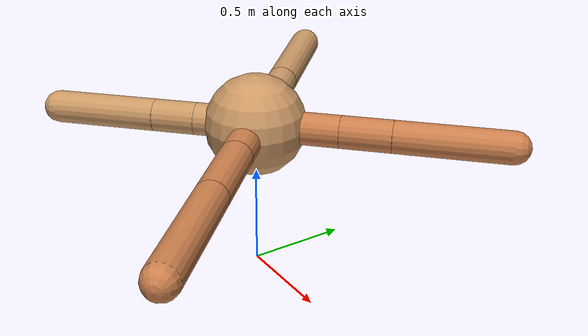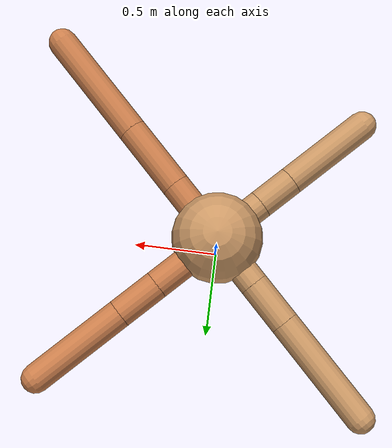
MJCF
<mujoco model="ant">
  <compiler angle="degree" coordinate="local" inertiafromgeom="true" />
  <option integrator="RK4" timestep="0.01" />
  <custom>
    <numeric data="0.0 0.0 0.55 1.0 0.0 0.0 0.0 0.0 1.0 0.0 -1.0 0.0 -1.0 0.0 1.0" name="init_qpos" />
  </custom>
  <default>
    <joint armature="1" damping="1" limited="true" />
    <geom conaffinity="0" condim="3" density="5.0" friction="1.5 0.1 0.1" margin="0.01" rgba="0.8 0.6 0.4 1" />
  </default>
  <worldbody>
    <body name="torso" pos="0 0 0.75">
      <geom name="torso_geom" pos="0 0 0" size="0.25" type="sphere" />

      <body name="front_left_leg" pos="0 0 0">
        <geom fromto="0.0 0.0 0.0 0.2940447224368168 0.2940447224368168 0.0" name="aux_1_geom" size="0.08" type="capsule" rgba=".8 .5 .3 1" />
        <body name="aux_1" pos="0.2940447224368168 0.2940447224368168 0.0">
          <joint axis="0 0 1" name="hip_1" pos="0.0 0.0 0.0" range="-40 40" type="hinge" />
          <geom fromto="0.0 0.0 0.0 0.17791382142567988 0.17791382142567988 0.0" name="left_leg_geom" size="0.08" type="capsule" rgba=".8 .5 .3 1" />
          <body pos="0.17791382142567988 0.17791382142567988 0.0" name="front_left_foot">
            <joint axis="-1 1 0" name="ankle_1" pos="0.0 0.0 0.0" range="30 100" type="hinge" />
            <geom fromto="0.0 0.0 0.0 0.3948117520232859 0.3948117520232859 0.0" name="left_ankle_geom" size="0.08" type="capsule" rgba=".8 .5 .3 1" />
          </body>
        </body>
      </body>
      <body name="front_right_leg" pos="0 0 0">
        <geom fromto="0.0 0.0 0.0 -0.22775435210792347 0.22775435210792347 0.0" name="aux_2_geom" size="0.08" type="capsule" />
        <body name="aux_2" pos="-0.22775435210792347 0.22775435210792347 0.0">
          <joint axis="0 0 1" name="hip_2" pos="0.0 0.0 0.0" range="-40 40" type="hinge" />
          <geom fromto="0.0 0.0 0.0 -0.18593116365903128 0.18593116365903128 0.0" name="right_leg_geom" size="0.08" type="capsule" />
          <body pos="-0.18593116365903128 0.18593116365903128 0.0" name="front_right_foot">
            <joint axis="1 1 0" name="ankle_2" pos="0.0 0.0 0.0" range="-100 -30" type="hinge" />
            <geom fromto="0.0 0.0 0.0 -0.45364075356205635 0.45364075356205635 0.0" name="right_ankle_geom" size="0.08" type="capsule" />
          </body>
        </body>
      </body>
      <body name="left_back_leg" pos="0 0 0">
        <geom fromto="0.0 0.0 0.0 -0.21139533368049987 -0.21139533368049987 0.0" name="aux_3_geom" size="0.08" type="capsule" />
        <body name="aux_3" pos="-0.21139533368049987 -0.21139533368049987 0.0">
          <joint axis="0 0 1" name="hip_3" pos="0.0 0.0 0.0" range="-40 40" type="hinge" />
          <geom fromto="0.0 0.0 0.0 -0.14988431458865067 -0.14988431458865067 0.0" name="back_leg_geom" size="0.08" type="capsule" />
          <body pos="-0.14988431458865067 -0.14988431458865067 0.0" name="left_back_foot">
            <joint axis="-1 1 0" name="ankle_3" pos="0.0 0.0 0.0" range="-100 -30" type="hinge" />
            <geom fromto="0.0 0.0 0.0 -0.35736125034911254 -0.35736125034911254 0.0" name="third_ankle_geom" size="0.08" type="capsule" />
          </body>
        </body>
      </body>
      <body name="right_back_leg" pos="0 0 0">
        <geom fromto="0.0 0.0 0.0 0.2602334965039436 -0.2602334965039436 0.0" name="aux_4_geom" size="0.08" type="capsule" rgba=".8 .5 .3 1" />
        <body name="aux_4" pos="0.2602334965039436 -0.2602334965039436 0.0">
          <joint axis="0 0 1" name="hip_4" pos="0.0 0.0 0.0" range="-40 40" type="hinge" />
          <geom fromto="0.0 0.0 0.0 0.2765469775629277 -0.2765469775629277 0.0" name="rightback_leg_geom" size="0.08" type="capsule" rgba=".8 .5 .3 1" />
          <body pos="0.2765469775629277 -0.2765469775629277 0.0" name="right_back_foot">
            <joint axis="1 1 0" name="ankle_4" pos="0.0 0.0 0.0" range="30 100" type="hinge" />
            <geom fromto="0.0 0.0 0.0 0.45316333274050624 -0.45316333274050624 0.0" name="fourth_ankle_geom" size="0.08" type="capsule" rgba=".8 .5 .3 1" />
          </body>
        </body>
      </body>
    </body>
  </worldbody>
  <actuator>
    <motor ctrllimited="true" ctrlrange="-1.0 1.0" joint="hip_4" gear="150" />
    <motor ctrllimited="true" ctrlrange="-1.0 1.0" joint="ankle_4" gear="150" />
    <motor ctrllimited="true" ctrlrange="-1.0 1.0" joint="hip_1" gear="150" />
    <motor ctrllimited="true" ctrlrange="-1.0 1.0" joint="ankle_1" gear="150" />
    <motor ctrllimited="true" ctrlrange="-1.0 1.0" joint="hip_2" gear="150" />
    <motor ctrllimited="true" ctrlrange="-1.0 1.0" joint="ankle_2" gear="150" />
    <motor ctrllimited="true" ctrlrange="-1.0 1.0" joint="hip_3" gear="150" />
    <motor ctrllimited="true" ctrlrange="-1.0 1.0" joint="ankle_3" gear="150" />
  </actuator>
</mujoco>
